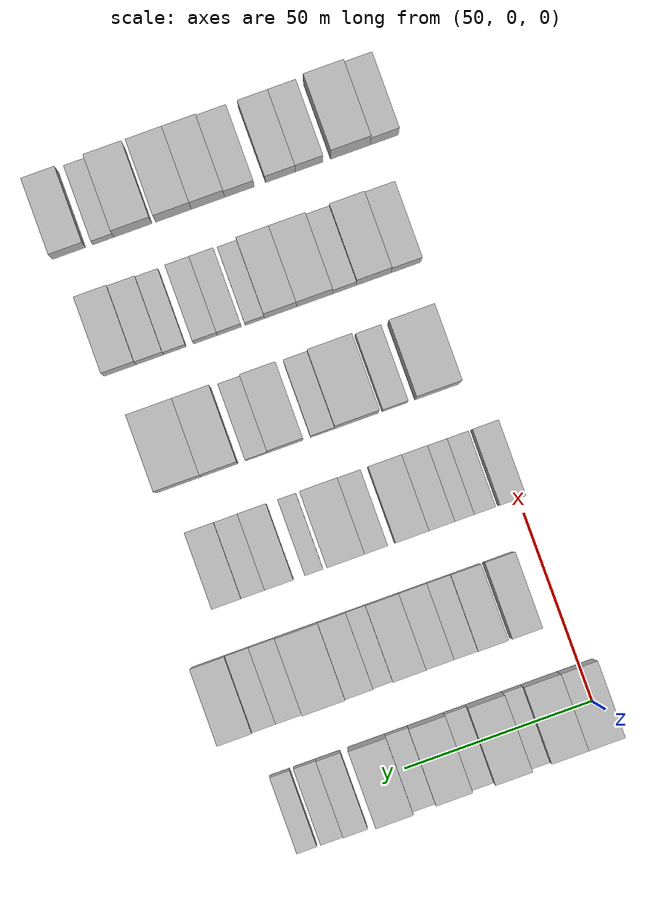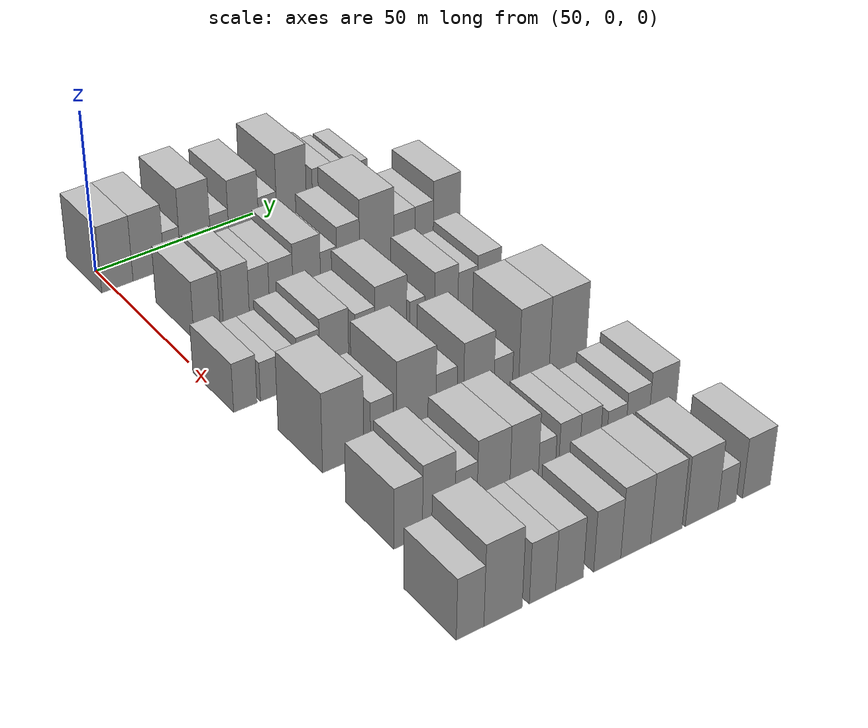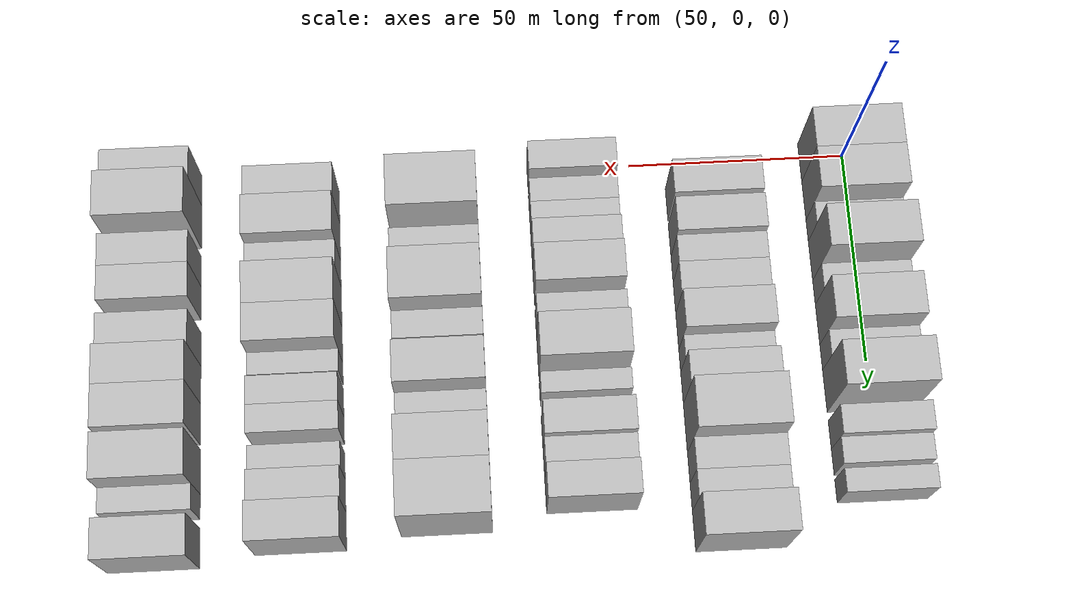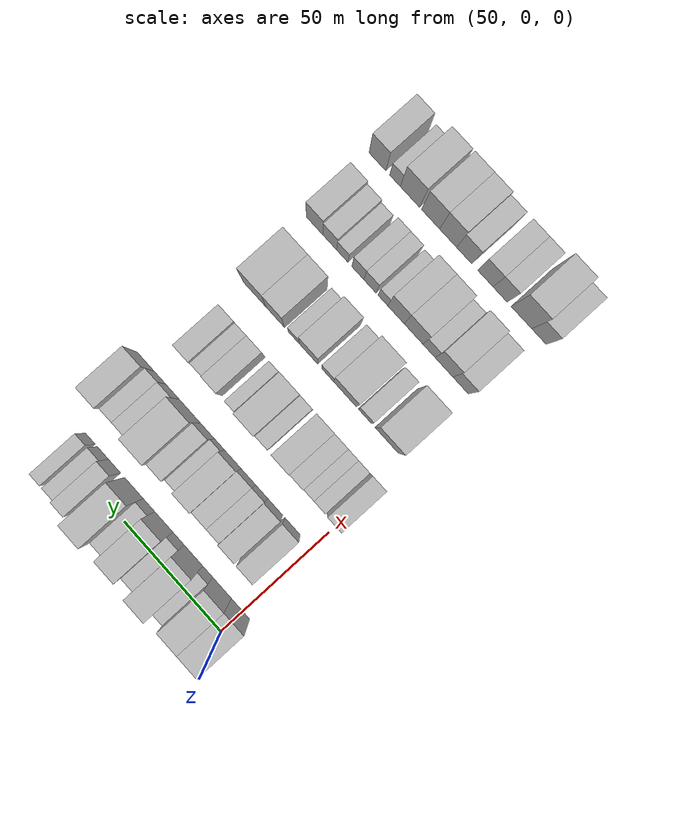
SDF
<sdf version="1.6">
 <world name="default">
  <model name="building_66">
   <static>1</static>
   <pose>50.0000 1.1582 0 0.000000 0.000000 0.000000</pose>
   <link name="link">
    <pose>0 0 10.50 0 0 0</pose>
    <collision name="collision"><geometry><box><size>20.0000 9.5234 21.0000</size></box></geometry></collision>
    <visual name="visual">
     <cast_shadows>0</cast_shadows>
     <geometry><box><size>20.0000 9.5234 21.0000</size></box></geometry>
     <material>
      <script>
       <uri>model://HANNAS_wall/materials/scripts</uri>
       <uri>model://HANNAS_wall/materials/textures</uri>
       <name>vrc/HANNAS_wall</name>
      </script>
     </material>
    </visual>
   </link>
  </model>
  <model name="building_67">
   <static>1</static>
   <pose>50.0000 10.7497 0 0.000000 0.000000 0.000000</pose>
   <link name="link">
    <pose>0 0 10.50 0 0 0</pose>
    <collision name="collision"><geometry><box><size>20.0000 9.6594 21.0000</size></box></geometry></collision>
    <visual name="visual">
     <cast_shadows>0</cast_shadows>
     <geometry><box><size>20.0000 9.6594 21.0000</size></box></geometry>
     <material>
      <script>
       <uri>model://HANNAS_wall/materials/scripts</uri>
       <uri>model://HANNAS_wall/materials/textures</uri>
       <name>vrc/HANNAS_wall</name>
      </script>
     </material>
    </visual>
   </link>
  </model>
  <model name="building_68">
   <static>1</static>
   <pose>50.0000 18.1560 0 0.000000 0.000000 0.000000</pose>
   <link name="link">
    <pose>0 0 6.00 0 0 0</pose>
    <collision name="collision"><geometry><box><size>20.0000 5.1533 12.0000</size></box></geometry></collision>
    <visual name="visual">
     <cast_shadows>0</cast_shadows>
     <geometry><box><size>20.0000 5.1533 12.0000</size></box></geometry>
     <material>
      <script>
       <uri>model://HANNAS_wall/materials/scripts</uri>
       <uri>model://HANNAS_wall/materials/textures</uri>
       <name>vrc/HANNAS_wall</name>
      </script>
     </material>
    </visual>
   </link>
  </model>
  <model name="building_69">
   <static>1</static>
   <pose>50.0000 25.5449 0 0.000000 0.000000 0.000000</pose>
   <link name="link">
    <pose>0 0 12.00 0 0 0</pose>
    <collision name="collision"><geometry><box><size>20.0000 9.6245 24.0000</size></box></geometry></collision>
    <visual name="visual">
     <cast_shadows>0</cast_shadows>
     <geometry><box><size>20.0000 9.6245 24.0000</size></box></geometry>
     <material>
      <script>
       <uri>model://HANNAS_wall/materials/scripts</uri>
       <uri>model://HANNAS_wall/materials/textures</uri>
       <name>vrc/HANNAS_wall</name>
      </script>
     </material>
    </visual>
   </link>
  </model>
  <model name="building_70">
   <static>1</static>
   <pose>50.0000 33.2552 0 0.000000 0.000000 0.000000</pose>
   <link name="link">
    <pose>0 0 6.00 0 0 0</pose>
    <collision name="collision"><geometry><box><size>20.0000 5.7960 12.0000</size></box></geometry></collision>
    <visual name="visual">
     <cast_shadows>0</cast_shadows>
     <geometry><box><size>20.0000 5.7960 12.0000</size></box></geometry>
     <material>
      <script>
       <uri>model://HANNAS_wall/materials/scripts</uri>
       <uri>model://HANNAS_wall/materials/textures</uri>
       <name>vrc/HANNAS_wall</name>
      </script>
     </material>
    </visual>
   </link>
  </model>
  <model name="building_71">
   <static>1</static>
   <pose>50.0000 40.9448 0 0.000000 0.000000 0.000000</pose>
   <link name="link">
    <pose>0 0 10.50 0 0 0</pose>
    <collision name="collision"><geometry><box><size>20.0000 9.5831 21.0000</size></box></geometry></collision>
    <visual name="visual">
     <cast_shadows>0</cast_shadows>
     <geometry><box><size>20.0000 9.5831 21.0000</size></box></geometry>
     <material>
      <script>
       <uri>model://HANNAS_wall/materials/scripts</uri>
       <uri>model://HANNAS_wall/materials/textures</uri>
       <name>vrc/HANNAS_wall</name>
      </script>
     </material>
    </visual>
   </link>
  </model>
  <model name="building_72">
   <static>1</static>
   <pose>50.0000 48.7038 0 0.000000 0.000000 0.000000</pose>
   <link name="link">
    <pose>0 0 6.00 0 0 0</pose>
    <collision name="collision"><geometry><box><size>20.0000 5.9350 12.0000</size></box></geometry></collision>
    <visual name="visual">
     <cast_shadows>0</cast_shadows>
     <geometry><box><size>20.0000 5.9350 12.0000</size></box></geometry>
     <material>
      <script>
       <uri>model://HANNAS_wall/materials/scripts</uri>
       <uri>model://HANNAS_wall/materials/textures</uri>
       <name>vrc/HANNAS_wall</name>
      </script>
     </material>
    </visual>
   </link>
  </model>
  <model name="building_73">
   <static>1</static>
   <pose>50.0000 56.5934 0 0.000000 0.000000 0.000000</pose>
   <link name="link">
    <pose>0 0 12.00 0 0 0</pose>
    <collision name="collision"><geometry><box><size>20.0000 9.8442 24.0000</size></box></geometry></collision>
    <visual name="visual">
     <cast_shadows>0</cast_shadows>
     <geometry><box><size>20.0000 9.8442 24.0000</size></box></geometry>
     <material>
      <script>
       <uri>model://HANNAS_wall/materials/scripts</uri>
       <uri>model://HANNAS_wall/materials/textures</uri>
       <name>vrc/HANNAS_wall</name>
      </script>
     </material>
    </visual>
   </link>
  </model>
  <model name="building_74">
   <static>1</static>
   <pose>50.0000 66.7348 0 0.000000 0.000000 0.000000</pose>
   <link name="link">
    <pose>0 0 7.50 0 0 0</pose>
    <collision name="collision"><geometry><box><size>20.0000 6.4386 15.0000</size></box></geometry></collision>
    <visual name="visual">
     <cast_shadows>0</cast_shadows>
     <geometry><box><size>20.0000 6.4386 15.0000</size></box></geometry>
     <material>
      <script>
       <uri>model://HANNAS_wall/materials/scripts</uri>
       <uri>model://HANNAS_wall/materials/textures</uri>
       <name>vrc/HANNAS_wall</name>
      </script>
     </material>
    </visual>
   </link>
  </model>
  <model name="building_75">
   <static>1</static>
   <pose>50.0000 72.9094 0 0.000000 0.000000 0.000000</pose>
   <link name="link">
    <pose>0 0 6.00 0 0 0</pose>
    <collision name="collision"><geometry><box><size>20.0000 5.9105 12.0000</size></box></geometry></collision>
    <visual name="visual">
     <cast_shadows>0</cast_shadows>
     <geometry><box><size>20.0000 5.9105 12.0000</size></box></geometry>
     <material>
      <script>
       <uri>model://HANNAS_wall/materials/scripts</uri>
       <uri>model://HANNAS_wall/materials/textures</uri>
       <name>vrc/HANNAS_wall</name>
      </script>
     </material>
    </visual>
   </link>
  </model>
  <model name="building_76">
   <static>1</static>
   <pose>50.0000 79.4867 0 0.000000 0.000000 0.000000</pose>
   <link name="link">
    <pose>0 0 6.00 0 0 0</pose>
    <collision name="collision"><geometry><box><size>20.0000 5.2441 12.0000</size></box></geometry></collision>
    <visual name="visual">
     <cast_shadows>0</cast_shadows>
     <geometry><box><size>20.0000 5.2441 12.0000</size></box></geometry>
     <material>
      <script>
       <uri>model://HANNAS_wall/materials/scripts</uri>
       <uri>model://HANNAS_wall/materials/textures</uri>
       <name>vrc/HANNAS_wall</name>
      </script>
     </material>
    </visual>
   </link>
  </model>
  <model name="building_195">
   <static>1</static>
   <pose>82.0000 10.1372 0 0.000000 0.000000 0.000000</pose>
   <link name="link">
    <pose>0 0 9.00 0 0 0</pose>
    <collision name="collision"><geometry><box><size>20.0000 7.9285 18.0000</size></box></geometry></collision>
    <visual name="visual">
     <cast_shadows>0</cast_shadows>
     <geometry><box><size>20.0000 7.9285 18.0000</size></box></geometry>
     <material>
      <script>
       <uri>model://HANNAS_wall/materials/scripts</uri>
       <uri>model://HANNAS_wall/materials/textures</uri>
       <name>vrc/HANNAS_wall</name>
      </script>
     </material>
    </visual>
   </link>
  </model>
  <model name="building_196">
   <static>1</static>
   <pose>82.0000 19.0751 0 0.000000 0.000000 0.000000</pose>
   <link name="link">
    <pose>0 0 9.00 0 0 0</pose>
    <collision name="collision"><geometry><box><size>20.0000 7.9473 18.0000</size></box></geometry></collision>
    <visual name="visual">
     <cast_shadows>0</cast_shadows>
     <geometry><box><size>20.0000 7.9473 18.0000</size></box></geometry>
     <material>
      <script>
       <uri>model://HANNAS_wall/materials/scripts</uri>
       <uri>model://HANNAS_wall/materials/textures</uri>
       <name>vrc/HANNAS_wall</name>
      </script>
     </material>
    </visual>
   </link>
  </model>
  <model name="building_197">
   <static>1</static>
   <pose>82.0000 26.1610 0 0.000000 0.000000 0.000000</pose>
   <link name="link">
    <pose>0 0 7.50 0 0 0</pose>
    <collision name="collision"><geometry><box><size>20.0000 6.2243 15.0000</size></box></geometry></collision>
    <visual name="visual">
     <cast_shadows>0</cast_shadows>
     <geometry><box><size>20.0000 6.2243 15.0000</size></box></geometry>
     <material>
      <script>
       <uri>model://HANNAS_wall/materials/scripts</uri>
       <uri>model://HANNAS_wall/materials/textures</uri>
       <name>vrc/HANNAS_wall</name>
      </script>
     </material>
    </visual>
   </link>
  </model>
  <model name="building_198">
   <static>1</static>
   <pose>82.0000 32.9740 0 0.000000 0.000000 0.000000</pose>
   <link name="link">
    <pose>0 0 7.50 0 0 0</pose>
    <collision name="collision"><geometry><box><size>20.0000 7.4019 15.0000</size></box></geometry></collision>
    <visual name="visual">
     <cast_shadows>0</cast_shadows>
     <geometry><box><size>20.0000 7.4019 15.0000</size></box></geometry>
     <material>
      <script>
       <uri>model://HANNAS_wall/materials/scripts</uri>
       <uri>model://HANNAS_wall/materials/textures</uri>
       <name>vrc/HANNAS_wall</name>
      </script>
     </material>
    </visual>
   </link>
  </model>
  <model name="building_199">
   <static>1</static>
   <pose>82.0000 41.0261 0 0.000000 0.000000 0.000000</pose>
   <link name="link">
    <pose>0 0 9.00 0 0 0</pose>
    <collision name="collision"><geometry><box><size>20.0000 8.7022 18.0000</size></box></geometry></collision>
    <visual name="visual">
     <cast_shadows>0</cast_shadows>
     <geometry><box><size>20.0000 8.7022 18.0000</size></box></geometry>
     <material>
      <script>
       <uri>model://HANNAS_wall/materials/scripts</uri>
       <uri>model://HANNAS_wall/materials/textures</uri>
       <name>vrc/HANNAS_wall</name>
      </script>
     </material>
    </visual>
   </link>
  </model>
  <model name="building_200">
   <static>1</static>
   <pose>82.0000 47.9804 0 0.000000 0.000000 0.000000</pose>
   <link name="link">
    <pose>0 0 6.00 0 0 0</pose>
    <collision name="collision"><geometry><box><size>20.0000 5.2063 12.0000</size></box></geometry></collision>
    <visual name="visual">
     <cast_shadows>0</cast_shadows>
     <geometry><box><size>20.0000 5.2063 12.0000</size></box></geometry>
     <material>
      <script>
       <uri>model://HANNAS_wall/materials/scripts</uri>
       <uri>model://HANNAS_wall/materials/textures</uri>
       <name>vrc/HANNAS_wall</name>
      </script>
     </material>
    </visual>
   </link>
  </model>
  <model name="building_201">
   <static>1</static>
   <pose>82.0000 54.2584 0 0.000000 0.000000 0.000000</pose>
   <link name="link">
    <pose>0 0 9.00 0 0 0</pose>
    <collision name="collision"><geometry><box><size>20.0000 7.3497 18.0000</size></box></geometry></collision>
    <visual name="visual">
     <cast_shadows>0</cast_shadows>
     <geometry><box><size>20.0000 7.3497 18.0000</size></box></geometry>
     <material>
      <script>
       <uri>model://HANNAS_wall/materials/scripts</uri>
       <uri>model://HANNAS_wall/materials/textures</uri>
       <name>vrc/HANNAS_wall</name>
      </script>
     </material>
    </visual>
   </link>
  </model>
  <model name="building_202">
   <static>1</static>
   <pose>82.0000 63.5313 0 0.000000 0.000000 0.000000</pose>
   <link name="link">
    <pose>0 0 12.00 0 0 0</pose>
    <collision name="collision"><geometry><box><size>20.0000 11.1962 24.0000</size></box></geometry></collision>
    <visual name="visual">
     <cast_shadows>0</cast_shadows>
     <geometry><box><size>20.0000 11.1962 24.0000</size></box></geometry>
     <material>
      <script>
       <uri>model://HANNAS_wall/materials/scripts</uri>
       <uri>model://HANNAS_wall/materials/textures</uri>
       <name>vrc/HANNAS_wall</name>
      </script>
     </material>
    </visual>
   </link>
  </model>
  <model name="building_203">
   <static>1</static>
   <pose>82.0000 72.6291 0 0.000000 0.000000 0.000000</pose>
   <link name="link">
    <pose>0 0 7.50 0 0 0</pose>
    <collision name="collision"><geometry><box><size>20.0000 6.9993 15.0000</size></box></geometry></collision>
    <visual name="visual">
     <cast_shadows>0</cast_shadows>
     <geometry><box><size>20.0000 6.9993 15.0000</size></box></geometry>
     <material>
      <script>
       <uri>model://HANNAS_wall/materials/scripts</uri>
       <uri>model://HANNAS_wall/materials/textures</uri>
       <name>vrc/HANNAS_wall</name>
      </script>
     </material>
    </visual>
   </link>
  </model>
  <model name="building_204">
   <static>1</static>
   <pose>82.0000 79.2075 0 0.000000 0.000000 0.000000</pose>
   <link name="link">
    <pose>0 0 7.50 0 0 0</pose>
    <collision name="collision"><geometry><box><size>20.0000 6.1575 15.0000</size></box></geometry></collision>
    <visual name="visual">
     <cast_shadows>0</cast_shadows>
     <geometry><box><size>20.0000 6.1575 15.0000</size></box></geometry>
     <material>
      <script>
       <uri>model://HANNAS_wall/materials/scripts</uri>
       <uri>model://HANNAS_wall/materials/textures</uri>
       <name>vrc/HANNAS_wall</name>
      </script>
     </material>
    </visual>
   </link>
  </model>
  <model name="building_205">
   <static>1</static>
   <pose>82.0000 86.7997 0 0.000000 0.000000 0.000000</pose>
   <link name="link">
    <pose>0 0 10.50 0 0 0</pose>
    <collision name="collision"><geometry><box><size>20.0000 9.0270 21.0000</size></box></geometry></collision>
    <visual name="visual">
     <cast_shadows>0</cast_shadows>
     <geometry><box><size>20.0000 9.0270 21.0000</size></box></geometry>
     <material>
      <script>
       <uri>model://HANNAS_wall/materials/scripts</uri>
       <uri>model://HANNAS_wall/materials/textures</uri>
       <name>vrc/HANNAS_wall</name>
      </script>
     </material>
    </visual>
   </link>
  </model>
  <model name="building_321">
   <static>1</static>
   <pose>114.0000 2.2367 0 0.000000 0.000000 0.000000</pose>
   <link name="link">
    <pose>0 0 7.50 0 0 0</pose>
    <collision name="collision"><geometry><box><size>20.0000 6.8282 15.0000</size></box></geometry></collision>
    <visual name="visual">
     <cast_shadows>0</cast_shadows>
     <geometry><box><size>20.0000 6.8282 15.0000</size></box></geometry>
     <material>
      <script>
       <uri>model://HANNAS_wall/materials/scripts</uri>
       <uri>model://HANNAS_wall/materials/textures</uri>
       <name>vrc/HANNAS_wall</name>
      </script>
     </material>
    </visual>
   </link>
  </model>
  <model name="building_322">
   <static>1</static>
   <pose>114.0000 9.4637 0 0.000000 0.000000 0.000000</pose>
   <link name="link">
    <pose>0 0 6.00 0 0 0</pose>
    <collision name="collision"><geometry><box><size>20.0000 5.6260 12.0000</size></box></geometry></collision>
    <visual name="visual">
     <cast_shadows>0</cast_shadows>
     <geometry><box><size>20.0000 5.6260 12.0000</size></box></geometry>
     <material>
      <script>
       <uri>model://HANNAS_wall/materials/scripts</uri>
       <uri>model://HANNAS_wall/materials/textures</uri>
       <name>vrc/HANNAS_wall</name>
      </script>
     </material>
    </visual>
   </link>
  </model>
  <model name="building_323">
   <static>1</static>
   <pose>114.0000 14.8955 0 0.000000 0.000000 0.000000</pose>
   <link name="link">
    <pose>0 0 6.00 0 0 0</pose>
    <collision name="collision"><geometry><box><size>20.0000 5.2375 12.0000</size></box></geometry></collision>
    <visual name="visual">
     <cast_shadows>0</cast_shadows>
     <geometry><box><size>20.0000 5.2375 12.0000</size></box></geometry>
     <material>
      <script>
       <uri>model://HANNAS_wall/materials/scripts</uri>
       <uri>model://HANNAS_wall/materials/textures</uri>
       <name>vrc/HANNAS_wall</name>
      </script>
     </material>
    </visual>
   </link>
  </model>
  <model name="building_324">
   <static>1</static>
   <pose>114.0000 20.9435 0 0.000000 0.000000 0.000000</pose>
   <link name="link">
    <pose>0 0 7.50 0 0 0</pose>
    <collision name="collision"><geometry><box><size>20.0000 6.8585 15.0000</size></box></geometry></collision>
    <visual name="visual">
     <cast_shadows>0</cast_shadows>
     <geometry><box><size>20.0000 6.8585 15.0000</size></box></geometry>
     <material>
      <script>
       <uri>model://HANNAS_wall/materials/scripts</uri>
       <uri>model://HANNAS_wall/materials/textures</uri>
       <name>vrc/HANNAS_wall</name>
      </script>
     </material>
    </visual>
   </link>
  </model>
  <model name="building_325">
   <static>1</static>
   <pose>114.0000 28.7507 0 0.000000 0.000000 0.000000</pose>
   <link name="link">
    <pose>0 0 9.00 0 0 0</pose>
    <collision name="collision"><geometry><box><size>20.0000 8.7560 18.0000</size></box></geometry></collision>
    <visual name="visual">
     <cast_shadows>0</cast_shadows>
     <geometry><box><size>20.0000 8.7560 18.0000</size></box></geometry>
     <material>
      <script>
       <uri>model://HANNAS_wall/materials/scripts</uri>
       <uri>model://HANNAS_wall/materials/textures</uri>
       <name>vrc/HANNAS_wall</name>
      </script>
     </material>
    </visual>
   </link>
  </model>
  <model name="building_326">
   <static>1</static>
   <pose>114.0000 38.1921 0 0.000000 0.000000 0.000000</pose>
   <link name="link">
    <pose>0 0 7.50 0 0 0</pose>
    <collision name="collision"><geometry><box><size>20.0000 6.1268 15.0000</size></box></geometry></collision>
    <visual name="visual">
     <cast_shadows>0</cast_shadows>
     <geometry><box><size>20.0000 6.1268 15.0000</size></box></geometry>
     <material>
      <script>
       <uri>model://HANNAS_wall/materials/scripts</uri>
       <uri>model://HANNAS_wall/materials/textures</uri>
       <name>vrc/HANNAS_wall</name>
      </script>
     </material>
    </visual>
   </link>
  </model>
  <model name="building_327">
   <static>1</static>
   <pose>114.0000 46.1789 0 0.000000 0.000000 0.000000</pose>
   <link name="link">
    <pose>0 0 10.50 0 0 0</pose>
    <collision name="collision"><geometry><box><size>20.0000 9.8467 21.0000</size></box></geometry></collision>
    <visual name="visual">
     <cast_shadows>0</cast_shadows>
     <geometry><box><size>20.0000 9.8467 21.0000</size></box></geometry>
     <material>
      <script>
       <uri>model://HANNAS_wall/materials/scripts</uri>
       <uri>model://HANNAS_wall/materials/textures</uri>
       <name>vrc/HANNAS_wall</name>
      </script>
     </material>
    </visual>
   </link>
  </model>
  <model name="building_328">
   <static>1</static>
   <pose>114.0000 54.5083 0 0.000000 0.000000 0.000000</pose>
   <link name="link">
    <pose>0 0 6.00 0 0 0</pose>
    <collision name="collision"><geometry><box><size>20.0000 4.8122 12.0000</size></box></geometry></collision>
    <visual name="visual">
     <cast_shadows>0</cast_shadows>
     <geometry><box><size>20.0000 4.8122 12.0000</size></box></geometry>
     <material>
      <script>
       <uri>model://HANNAS_wall/materials/scripts</uri>
       <uri>model://HANNAS_wall/materials/textures</uri>
       <name>vrc/HANNAS_wall</name>
      </script>
     </material>
    </visual>
   </link>
  </model>
  <model name="building_329">
   <static>1</static>
   <pose>114.0000 63.6697 0 0.000000 0.000000 0.000000</pose>
   <link name="link">
    <pose>0 0 9.00 0 0 0</pose>
    <collision name="collision"><geometry><box><size>20.0000 7.5105 18.0000</size></box></geometry></collision>
    <visual name="visual">
     <cast_shadows>0</cast_shadows>
     <geometry><box><size>20.0000 7.5105 18.0000</size></box></geometry>
     <material>
      <script>
       <uri>model://HANNAS_wall/materials/scripts</uri>
       <uri>model://HANNAS_wall/materials/textures</uri>
       <name>vrc/HANNAS_wall</name>
      </script>
     </material>
    </visual>
   </link>
  </model>
  <model name="building_330">
   <static>1</static>
   <pose>114.0000 70.5227 0 0.000000 0.000000 0.000000</pose>
   <link name="link">
    <pose>0 0 7.50 0 0 0</pose>
    <collision name="collision"><geometry><box><size>20.0000 6.1955 15.0000</size></box></geometry></collision>
    <visual name="visual">
     <cast_shadows>0</cast_shadows>
     <geometry><box><size>20.0000 6.1955 15.0000</size></box></geometry>
     <material>
      <script>
       <uri>model://HANNAS_wall/materials/scripts</uri>
       <uri>model://HANNAS_wall/materials/textures</uri>
       <name>vrc/HANNAS_wall</name>
      </script>
     </material>
    </visual>
   </link>
  </model>
  <model name="building_331">
   <static>1</static>
   <pose>114.0000 77.4475 0 0.000000 0.000000 0.000000</pose>
   <link name="link">
    <pose>0 0 9.00 0 0 0</pose>
    <collision name="collision"><geometry><box><size>20.0000 7.6540 18.0000</size></box></geometry></collision>
    <visual name="visual">
     <cast_shadows>0</cast_shadows>
     <geometry><box><size>20.0000 7.6540 18.0000</size></box></geometry>
     <material>
      <script>
       <uri>model://HANNAS_wall/materials/scripts</uri>
       <uri>model://HANNAS_wall/materials/textures</uri>
       <name>vrc/HANNAS_wall</name>
      </script>
     </material>
    </visual>
   </link>
  </model>
  <model name="building_439">
   <static>1</static>
   <pose>146.0000 10.2474 0 0.000000 0.000000 0.000000</pose>
   <link name="link">
    <pose>0 0 12.00 0 0 0</pose>
    <collision name="collision"><geometry><box><size>20.0000 11.8836 24.0000</size></box></geometry></collision>
    <visual name="visual">
     <cast_shadows>0</cast_shadows>
     <geometry><box><size>20.0000 11.8836 24.0000</size></box></geometry>
     <material>
      <script>
       <uri>model://HANNAS_wall/materials/scripts</uri>
       <uri>model://HANNAS_wall/materials/textures</uri>
       <name>vrc/HANNAS_wall</name>
      </script>
     </material>
    </visual>
   </link>
  </model>
  <model name="building_440">
   <static>1</static>
   <pose>146.0000 21.5325 0 0.000000 0.000000 0.000000</pose>
   <link name="link">
    <pose>0 0 7.50 0 0 0</pose>
    <collision name="collision"><geometry><box><size>20.0000 6.6866 15.0000</size></box></geometry></collision>
    <visual name="visual">
     <cast_shadows>0</cast_shadows>
     <geometry><box><size>20.0000 6.6866 15.0000</size></box></geometry>
     <material>
      <script>
       <uri>model://HANNAS_wall/materials/scripts</uri>
       <uri>model://HANNAS_wall/materials/textures</uri>
       <name>vrc/HANNAS_wall</name>
      </script>
     </material>
    </visual>
   </link>
  </model>
  <model name="building_441">
   <static>1</static>
   <pose>146.0000 31.7260 0 0.000000 0.000000 0.000000</pose>
   <link name="link">
    <pose>0 0 12.00 0 0 0</pose>
    <collision name="collision"><geometry><box><size>20.0000 11.7004 24.0000</size></box></geometry></collision>
    <visual name="visual">
     <cast_shadows>0</cast_shadows>
     <geometry><box><size>20.0000 11.7004 24.0000</size></box></geometry>
     <material>
      <script>
       <uri>model://HANNAS_wall/materials/scripts</uri>
       <uri>model://HANNAS_wall/materials/textures</uri>
       <name>vrc/HANNAS_wall</name>
      </script>
     </material>
    </visual>
   </link>
  </model>
  <model name="building_442">
   <static>1</static>
   <pose>146.0000 40.7344 0 0.000000 0.000000 0.000000</pose>
   <link name="link">
    <pose>0 0 7.50 0 0 0</pose>
    <collision name="collision"><geometry><box><size>20.0000 6.3164 15.0000</size></box></geometry></collision>
    <visual name="visual">
     <cast_shadows>0</cast_shadows>
     <geometry><box><size>20.0000 6.3164 15.0000</size></box></geometry>
     <material>
      <script>
       <uri>model://HANNAS_wall/materials/scripts</uri>
       <uri>model://HANNAS_wall/materials/textures</uri>
       <name>vrc/HANNAS_wall</name>
      </script>
     </material>
    </visual>
   </link>
  </model>
  <model name="building_443">
   <static>1</static>
   <pose>146.0000 50.5978 0 0.000000 0.000000 0.000000</pose>
   <link name="link">
    <pose>0 0 10.50 0 0 0</pose>
    <collision name="collision"><geometry><box><size>20.0000 9.4105 21.0000</size></box></geometry></collision>
    <visual name="visual">
     <cast_shadows>0</cast_shadows>
     <geometry><box><size>20.0000 9.4105 21.0000</size></box></geometry>
     <material>
      <script>
       <uri>model://HANNAS_wall/materials/scripts</uri>
       <uri>model://HANNAS_wall/materials/textures</uri>
       <name>vrc/HANNAS_wall</name>
      </script>
     </material>
    </visual>
   </link>
  </model>
  <model name="building_444">
   <static>1</static>
   <pose>146.0000 58.2253 0 0.000000 0.000000 0.000000</pose>
   <link name="link">
    <pose>0 0 6.00 0 0 0</pose>
    <collision name="collision"><geometry><box><size>20.0000 5.8445 12.0000</size></box></geometry></collision>
    <visual name="visual">
     <cast_shadows>0</cast_shadows>
     <geometry><box><size>20.0000 5.8445 12.0000</size></box></geometry>
     <material>
      <script>
       <uri>model://HANNAS_wall/materials/scripts</uri>
       <uri>model://HANNAS_wall/materials/textures</uri>
       <name>vrc/HANNAS_wall</name>
      </script>
     </material>
    </visual>
   </link>
  </model>
  <model name="building_445">
   <static>1</static>
   <pose>146.0000 68.0023 0 0.000000 0.000000 0.000000</pose>
   <link name="link">
    <pose>0 0 12.00 0 0 0</pose>
    <collision name="collision"><geometry><box><size>20.0000 9.7095 24.0000</size></box></geometry></collision>
    <visual name="visual">
     <cast_shadows>0</cast_shadows>
     <geometry><box><size>20.0000 9.7095 24.0000</size></box></geometry>
     <material>
      <script>
       <uri>model://HANNAS_wall/materials/scripts</uri>
       <uri>model://HANNAS_wall/materials/textures</uri>
       <name>vrc/HANNAS_wall</name>
      </script>
     </material>
    </visual>
   </link>
  </model>
  <model name="building_446">
   <static>1</static>
   <pose>146.0000 78.8422 0 0.000000 0.000000 0.000000</pose>
   <link name="link">
    <pose>0 0 12.00 0 0 0</pose>
    <collision name="collision"><geometry><box><size>20.0000 11.9704 24.0000</size></box></geometry></collision>
    <visual name="visual">
     <cast_shadows>0</cast_shadows>
     <geometry><box><size>20.0000 11.9704 24.0000</size></box></geometry>
     <material>
      <script>
       <uri>model://HANNAS_wall/materials/scripts</uri>
       <uri>model://HANNAS_wall/materials/textures</uri>
       <name>vrc/HANNAS_wall</name>
      </script>
     </material>
    </visual>
   </link>
  </model>
  <model name="building_558">
   <static>1</static>
   <pose>178.0000 6.9817 0 0.000000 0.000000 0.000000</pose>
   <link name="link">
    <pose>0 0 9.00 0 0 0</pose>
    <collision name="collision"><geometry><box><size>20.0000 7.9818 18.0000</size></box></geometry></collision>
    <visual name="visual">
     <cast_shadows>0</cast_shadows>
     <geometry><box><size>20.0000 7.9818 18.0000</size></box></geometry>
     <material>
      <script>
       <uri>model://HANNAS_wall/materials/scripts</uri>
       <uri>model://HANNAS_wall/materials/textures</uri>
       <name>vrc/HANNAS_wall</name>
      </script>
     </material>
    </visual>
   </link>
  </model>
  <model name="building_559">
   <static>1</static>
   <pose>178.0000 15.5876 0 0.000000 0.000000 0.000000</pose>
   <link name="link">
    <pose>0 0 10.50 0 0 0</pose>
    <collision name="collision"><geometry><box><size>20.0000 9.2301 21.0000</size></box></geometry></collision>
    <visual name="visual">
     <cast_shadows>0</cast_shadows>
     <geometry><box><size>20.0000 9.2301 21.0000</size></box></geometry>
     <material>
      <script>
       <uri>model://HANNAS_wall/materials/scripts</uri>
       <uri>model://HANNAS_wall/materials/textures</uri>
       <name>vrc/HANNAS_wall</name>
      </script>
     </material>
    </visual>
   </link>
  </model>
  <model name="building_560">
   <static>1</static>
   <pose>178.0000 23.3576 0 0.000000 0.000000 0.000000</pose>
   <link name="link">
    <pose>0 0 7.50 0 0 0</pose>
    <collision name="collision"><geometry><box><size>20.0000 6.3099 15.0000</size></box></geometry></collision>
    <visual name="visual">
     <cast_shadows>0</cast_shadows>
     <geometry><box><size>20.0000 6.3099 15.0000</size></box></geometry>
     <material>
      <script>
       <uri>model://HANNAS_wall/materials/scripts</uri>
       <uri>model://HANNAS_wall/materials/textures</uri>
       <name>vrc/HANNAS_wall</name>
      </script>
     </material>
    </visual>
   </link>
  </model>
  <model name="building_561">
   <static>1</static>
   <pose>178.0000 31.3076 0 0.000000 0.000000 0.000000</pose>
   <link name="link">
    <pose>0 0 10.50 0 0 0</pose>
    <collision name="collision"><geometry><box><size>20.0000 9.5902 21.0000</size></box></geometry></collision>
    <visual name="visual">
     <cast_shadows>0</cast_shadows>
     <geometry><box><size>20.0000 9.5902 21.0000</size></box></geometry>
     <material>
      <script>
       <uri>model://HANNAS_wall/materials/scripts</uri>
       <uri>model://HANNAS_wall/materials/textures</uri>
       <name>vrc/HANNAS_wall</name>
      </script>
     </material>
    </visual>
   </link>
  </model>
  <model name="building_562">
   <static>1</static>
   <pose>178.0000 40.3776 0 0.000000 0.000000 0.000000</pose>
   <link name="link">
    <pose>0 0 10.50 0 0 0</pose>
    <collision name="collision"><geometry><box><size>20.0000 8.5498 21.0000</size></box></geometry></collision>
    <visual name="visual">
     <cast_shadows>0</cast_shadows>
     <geometry><box><size>20.0000 8.5498 21.0000</size></box></geometry>
     <material>
      <script>
       <uri>model://HANNAS_wall/materials/scripts</uri>
       <uri>model://HANNAS_wall/materials/textures</uri>
       <name>vrc/HANNAS_wall</name>
      </script>
     </material>
    </visual>
   </link>
  </model>
  <model name="building_563">
   <static>1</static>
   <pose>178.0000 47.2034 0 0.000000 0.000000 0.000000</pose>
   <link name="link">
    <pose>0 0 6.00 0 0 0</pose>
    <collision name="collision"><geometry><box><size>20.0000 5.1020 12.0000</size></box></geometry></collision>
    <visual name="visual">
     <cast_shadows>0</cast_shadows>
     <geometry><box><size>20.0000 5.1020 12.0000</size></box></geometry>
     <material>
      <script>
       <uri>model://HANNAS_wall/materials/scripts</uri>
       <uri>model://HANNAS_wall/materials/textures</uri>
       <name>vrc/HANNAS_wall</name>
      </script>
     </material>
    </visual>
   </link>
  </model>
  <model name="building_564">
   <static>1</static>
   <pose>178.0000 53.9417 0 0.000000 0.000000 0.000000</pose>
   <link name="link">
    <pose>0 0 7.50 0 0 0</pose>
    <collision name="collision"><geometry><box><size>20.0000 6.3745 15.0000</size></box></geometry></collision>
    <visual name="visual">
     <cast_shadows>0</cast_shadows>
     <geometry><box><size>20.0000 6.3745 15.0000</size></box></geometry>
     <material>
      <script>
       <uri>model://HANNAS_wall/materials/scripts</uri>
       <uri>model://HANNAS_wall/materials/textures</uri>
       <name>vrc/HANNAS_wall</name>
      </script>
     </material>
    </visual>
   </link>
  </model>
  <model name="building_565">
   <static>1</static>
   <pose>178.0000 60.2807 0 0.000000 0.000000 0.000000</pose>
   <link name="link">
    <pose>0 0 7.50 0 0 0</pose>
    <collision name="collision"><geometry><box><size>20.0000 6.3036 15.0000</size></box></geometry></collision>
    <visual name="visual">
     <cast_shadows>0</cast_shadows>
     <geometry><box><size>20.0000 6.3036 15.0000</size></box></geometry>
     <material>
      <script>
       <uri>model://HANNAS_wall/materials/scripts</uri>
       <uri>model://HANNAS_wall/materials/textures</uri>
       <name>vrc/HANNAS_wall</name>
      </script>
     </material>
    </visual>
   </link>
  </model>
  <model name="building_566">
   <static>1</static>
   <pose>178.0000 68.4048 0 0.000000 0.000000 0.000000</pose>
   <link name="link">
    <pose>0 0 6.00 0 0 0</pose>
    <collision name="collision"><geometry><box><size>20.0000 5.9445 12.0000</size></box></geometry></collision>
    <visual name="visual">
     <cast_shadows>0</cast_shadows>
     <geometry><box><size>20.0000 5.9445 12.0000</size></box></geometry>
     <material>
      <script>
       <uri>model://HANNAS_wall/materials/scripts</uri>
       <uri>model://HANNAS_wall/materials/textures</uri>
       <name>vrc/HANNAS_wall</name>
      </script>
     </material>
    </visual>
   </link>
  </model>
  <model name="building_567">
   <static>1</static>
   <pose>178.0000 75.0269 0 0.000000 0.000000 0.000000</pose>
   <link name="link">
    <pose>0 0 7.50 0 0 0</pose>
    <collision name="collision"><geometry><box><size>20.0000 7.2998 15.0000</size></box></geometry></collision>
    <visual name="visual">
     <cast_shadows>0</cast_shadows>
     <geometry><box><size>20.0000 7.2998 15.0000</size></box></geometry>
     <material>
      <script>
       <uri>model://HANNAS_wall/materials/scripts</uri>
       <uri>model://HANNAS_wall/materials/textures</uri>
       <name>vrc/HANNAS_wall</name>
      </script>
     </material>
    </visual>
   </link>
  </model>
  <model name="building_568">
   <static>1</static>
   <pose>178.0000 82.9766 0 0.000000 0.000000 0.000000</pose>
   <link name="link">
    <pose>0 0 9.00 0 0 0</pose>
    <collision name="collision"><geometry><box><size>20.0000 8.5995 18.0000</size></box></geometry></collision>
    <visual name="visual">
     <cast_shadows>0</cast_shadows>
     <geometry><box><size>20.0000 8.5995 18.0000</size></box></geometry>
     <material>
      <script>
       <uri>model://HANNAS_wall/materials/scripts</uri>
       <uri>model://HANNAS_wall/materials/textures</uri>
       <name>vrc/HANNAS_wall</name>
      </script>
     </material>
    </visual>
   </link>
  </model>
  <model name="building_684">
   <static>1</static>
   <pose>210.0000 1.1784 0 0.000000 0.000000 0.000000</pose>
   <link name="link">
    <pose>0 0 9.00 0 0 0</pose>
    <collision name="collision"><geometry><box><size>20.0000 7.4839 18.0000</size></box></geometry></collision>
    <visual name="visual">
     <cast_shadows>0</cast_shadows>
     <geometry><box><size>20.0000 7.4839 18.0000</size></box></geometry>
     <material>
      <script>
       <uri>model://HANNAS_wall/materials/scripts</uri>
       <uri>model://HANNAS_wall/materials/textures</uri>
       <name>vrc/HANNAS_wall</name>
      </script>
     </material>
    </visual>
   </link>
  </model>
  <model name="building_685">
   <static>1</static>
   <pose>210.0000 10.2009 0 0.000000 0.000000 0.000000</pose>
   <link name="link">
    <pose>0 0 12.00 0 0 0</pose>
    <collision name="collision"><geometry><box><size>20.0000 10.5611 24.0000</size></box></geometry></collision>
    <visual name="visual">
     <cast_shadows>0</cast_shadows>
     <geometry><box><size>20.0000 10.5611 24.0000</size></box></geometry>
     <material>
      <script>
       <uri>model://HANNAS_wall/materials/scripts</uri>
       <uri>model://HANNAS_wall/materials/textures</uri>
       <name>vrc/HANNAS_wall</name>
      </script>
     </material>
    </visual>
   </link>
  </model>
  <model name="building_686">
   <static>1</static>
   <pose>210.0000 21.1812 0 0.000000 0.000000 0.000000</pose>
   <link name="link">
    <pose>0 0 9.00 0 0 0</pose>
    <collision name="collision"><geometry><box><size>20.0000 7.3994 18.0000</size></box></geometry></collision>
    <visual name="visual">
     <cast_shadows>0</cast_shadows>
     <geometry><box><size>20.0000 7.3994 18.0000</size></box></geometry>
     <material>
      <script>
       <uri>model://HANNAS_wall/materials/scripts</uri>
       <uri>model://HANNAS_wall/materials/textures</uri>
       <name>vrc/HANNAS_wall</name>
      </script>
     </material>
    </visual>
   </link>
  </model>
  <model name="building_687">
   <static>1</static>
   <pose>210.0000 28.8499 0 0.000000 0.000000 0.000000</pose>
   <link name="link">
    <pose>0 0 9.00 0 0 0</pose>
    <collision name="collision"><geometry><box><size>20.0000 7.9381 18.0000</size></box></geometry></collision>
    <visual name="visual">
     <cast_shadows>0</cast_shadows>
     <geometry><box><size>20.0000 7.9381 18.0000</size></box></geometry>
     <material>
      <script>
       <uri>model://HANNAS_wall/materials/scripts</uri>
       <uri>model://HANNAS_wall/materials/textures</uri>
       <name>vrc/HANNAS_wall</name>
      </script>
     </material>
    </visual>
   </link>
  </model>
  <model name="building_688">
   <static>1</static>
   <pose>210.0000 39.7672 0 0.000000 0.000000 0.000000</pose>
   <link name="link">
    <pose>0 0 9.00 0 0 0</pose>
    <collision name="collision"><geometry><box><size>20.0000 7.8964 18.0000</size></box></geometry></collision>
    <visual name="visual">
     <cast_shadows>0</cast_shadows>
     <geometry><box><size>20.0000 7.8964 18.0000</size></box></geometry>
     <material>
      <script>
       <uri>model://HANNAS_wall/materials/scripts</uri>
       <uri>model://HANNAS_wall/materials/textures</uri>
       <name>vrc/HANNAS_wall</name>
      </script>
     </material>
    </visual>
   </link>
  </model>
  <model name="building_689">
   <static>1</static>
   <pose>210.0000 48.1391 0 0.000000 0.000000 0.000000</pose>
   <link name="link">
    <pose>0 0 10.50 0 0 0</pose>
    <collision name="collision"><geometry><box><size>20.0000 8.8474 21.0000</size></box></geometry></collision>
    <visual name="visual">
     <cast_shadows>0</cast_shadows>
     <geometry><box><size>20.0000 8.8474 21.0000</size></box></geometry>
     <material>
      <script>
       <uri>model://HANNAS_wall/materials/scripts</uri>
       <uri>model://HANNAS_wall/materials/textures</uri>
       <name>vrc/HANNAS_wall</name>
      </script>
     </material>
    </visual>
   </link>
  </model>
  <model name="building_690">
   <static>1</static>
   <pose>210.0000 57.3030 0 0.000000 0.000000 0.000000</pose>
   <link name="link">
    <pose>0 0 10.50 0 0 0</pose>
    <collision name="collision"><geometry><box><size>20.0000 9.4805 21.0000</size></box></geometry></collision>
    <visual name="visual">
     <cast_shadows>0</cast_shadows>
     <geometry><box><size>20.0000 9.4805 21.0000</size></box></geometry>
     <material>
      <script>
       <uri>model://HANNAS_wall/materials/scripts</uri>
       <uri>model://HANNAS_wall/materials/textures</uri>
       <name>vrc/HANNAS_wall</name>
      </script>
     </material>
    </visual>
   </link>
  </model>
  <model name="building_691">
   <static>1</static>
   <pose>210.0000 68.0810 0 0.000000 0.000000 0.000000</pose>
   <link name="link">
    <pose>0 0 10.50 0 0 0</pose>
    <collision name="collision"><geometry><box><size>20.0000 10.0756 21.0000</size></box></geometry></collision>
    <visual name="visual">
     <cast_shadows>0</cast_shadows>
     <geometry><box><size>20.0000 10.0756 21.0000</size></box></geometry>
     <material>
      <script>
       <uri>model://HANNAS_wall/materials/scripts</uri>
       <uri>model://HANNAS_wall/materials/textures</uri>
       <name>vrc/HANNAS_wall</name>
      </script>
     </material>
    </visual>
   </link>
  </model>
  <model name="building_692">
   <static>1</static>
   <pose>210.0000 75.9326 0 0.000000 0.000000 0.000000</pose>
   <link name="link">
    <pose>0 0 6.00 0 0 0</pose>
    <collision name="collision"><geometry><box><size>20.0000 5.6275 12.0000</size></box></geometry></collision>
    <visual name="visual">
     <cast_shadows>0</cast_shadows>
     <geometry><box><size>20.0000 5.6275 12.0000</size></box></geometry>
     <material>
      <script>
       <uri>model://HANNAS_wall/materials/scripts</uri>
       <uri>model://HANNAS_wall/materials/textures</uri>
       <name>vrc/HANNAS_wall</name>
      </script>
     </material>
    </visual>
   </link>
  </model>
  <model name="building_693">
   <static>1</static>
   <pose>210.0000 85.1603 0 0.000000 0.000000 0.000000</pose>
   <link name="link">
    <pose>0 0 9.00 0 0 0</pose>
    <collision name="collision"><geometry><box><size>20.0000 8.8278 18.0000</size></box></geometry></collision>
    <visual name="visual">
     <cast_shadows>0</cast_shadows>
     <geometry><box><size>20.0000 8.8278 18.0000</size></box></geometry>
     <material>
      <script>
       <uri>model://HANNAS_wall/materials/scripts</uri>
       <uri>model://HANNAS_wall/materials/textures</uri>
       <name>vrc/HANNAS_wall</name>
      </script>
     </material>
    </visual>
   </link>
  </model>
 </world>
</sdf>
